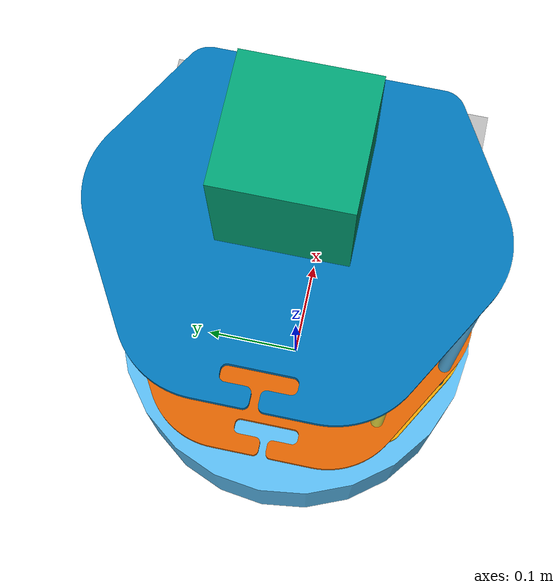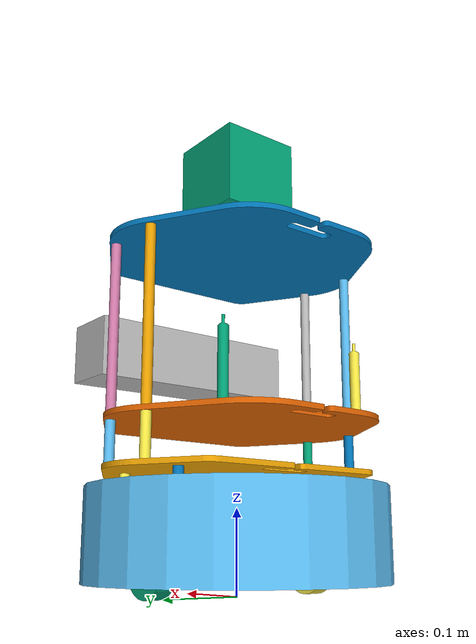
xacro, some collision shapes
<?xml version="1.0"?>
<!--
    - Base      : kobuki
    - Stacks    : hexagons
    - 3d Sensor : fisheye_stereo
    - IMU Sensor: mpu_6000
-->
<robot name="turtlebot" xmlns:xacro="http://ros.org/wiki/xacro">

  <xacro:include filename="$(find turtlebot_description)/urdf/turtlebot_common_library.urdf.xacro" />
  <xacro:include filename="$(find kobuki_description)/urdf/kobuki_mpu_6000.urdf.xacro" />
  <xacro:include filename="$(find turtlebot_description)/urdf/stacks/hexagons.urdf.xacro"/>
  <xacro:include filename="$(find turtlebot_description)/urdf/sensors/fisheye_stereo.urdf.xacro"/>
  <xacro:include filename="$(find turtlebot_description)/urdf/sensors/laser.urdf.xacro"/>

  <xacro:kobuki/>
  <xacro:stack_hexagons parent="base_link"/>
  <xacro:sensor_stereo  parent="base_link"/>
  <xacro:sensor_laser   parent="base_link"/>
</robot>

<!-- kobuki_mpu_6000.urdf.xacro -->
<robot name="kobuki" xmlns:xacro="http://ros.org/wiki/xacro">
  <xacro:include filename="$(find kobuki_description)/urdf/common_properties.urdf.xacro"/>
  <xacro:include filename="$(find kobuki_description)/urdf/kobuki_mpu_6000_gazebo.urdf.xacro"/>

  <!-- Kobuki -->
  <xacro:macro name="kobuki">
    <link name="base_footprint"/>
    <joint name="base_joint" type="fixed">
      <origin xyz="0 0 0.0102" rpy="0 0 0" />
      <parent link="base_footprint"/>
      <child link="base_link" />
    </joint>
    <link name="base_link">
      <visual>
        <geometry>
          <!-- new mesh -->
          <mesh filename="package://kobuki_description/meshes/main_body.dae" />
        </geometry>
        <origin xyz="0.001 0 0.05199" rpy="0 0 0"/>
      </visual>
      <collision name="base">
        <geometry>
          <cylinder length="0.10938" radius="0.178"/>
        </geometry>
        <origin xyz="0.0 0 0.05949" rpy="0 0 0"/>
      </collision>
      <inertial>
        <!-- COM experimentally determined -->
        <origin xyz="0.01 0 0"/>
        <mass value="2.4"/> <!-- 2.4/2.6 kg for small/big battery pack -->
        <inertia ixx="0.019995" ixy="0.0" ixz="0.0"
                 iyy="0.019995" iyz="0.0"
                 izz="0.03675" />
      </inertial>
    </link>

    <joint name="wheel_left_joint" type="continuous">
      <parent link="base_link"/>
      <child link="wheel_left_link"/>
      <origin xyz="0.00 ${0.23/2} 0.0250" rpy="${-M_PI/2} 0 0"/>
      <axis xyz="0 0 1"/>
    </joint>
    <link name="wheel_left_link">
      <visual>
        <geometry>
          <mesh filename="package://kobuki_description/meshes/wheel.dae"/>
        </geometry>
        <origin xyz="0 0 0" rpy="0 0 0"/>
      </visual>
      <collision>
        <geometry>
          <cylinder length="0.0206" radius="0.0352"/>
        </geometry>
        <origin rpy="0 0 0" xyz="0 0 0"/>
      </collision>
      <inertial>
        <mass value="0.01" />
        <origin xyz="0 0 0" />
        <inertia ixx="0.001" ixy="0.0" ixz="0.0"
                 iyy="0.001" iyz="0.0"
                 izz="0.001" />
      </inertial>
    </link>

    <joint name="wheel_right_joint" type="continuous">
      <parent link="base_link"/>
      <child link="wheel_right_link"/>
      <origin xyz="0.00 -${0.23/2} 0.0250" rpy="${-M_PI/2} 0 0"/>
      <axis xyz="0 0 1"/>
    </joint>
    <link name="wheel_right_link">
      <visual>
        <geometry>
          <mesh filename="package://kobuki_description/meshes/wheel.dae"/>
        </geometry>
        <origin xyz="0 0 0" rpy="0 0 0"/>
      </visual>
      <collision>
        <geometry>
          <cylinder length="0.0206" radius="0.0350"/>
        </geometry>
        <origin rpy="0 0 0" xyz="0 0 0"/>
      </collision>
      <inertial>
        <mass value="0.01" />
        <origin xyz="0 0 0" />
        <inertia ixx="0.001" ixy="0.0" ixz="0.0"
                 iyy="0.001" iyz="0.0"
                 izz="0.001" />
      </inertial>
    </link>

    <joint name="caster_front_joint" type="fixed">
      <parent link="base_link"/>
      <child link="caster_front_link"/>
      <origin xyz="0.115 0.0 0.007" rpy="${-M_PI/2} 0 0"/>
    </joint>
    <link name="caster_front_link">
      <collision>
        <geometry>
          <cylinder length="0.0176" radius="0.017"/>
        </geometry>
        <origin rpy="0 0 0" xyz="0 0 0"/>
      </collision>
      <inertial>
        <mass value="0.01" />
        <origin xyz="0 0 0" />
        <inertia ixx="0.001" ixy="0.0" ixz="0.0"
                 iyy="0.001" iyz="0.0"
                 izz="0.001" />
      </inertial>
    </link>

    <joint name="caster_back_joint" type="fixed">
      <parent link="base_link"/>
      <child link="caster_back_link"/>
      <origin xyz="-0.135 0.0 0.009" rpy="${-M_PI/2} 0 0"/>
    </joint>
    <link name="caster_back_link">
      <collision>
        <geometry>
          <cylinder length="0.0176" radius="0.017"/>
        </geometry>
        <origin rpy="0 0 0" xyz="0 0 0"/>
      </collision>
      <inertial>
        <mass value="0.01" />
        <origin xyz="0 0 0" />
        <inertia ixx="0.001" ixy="0.0" ixz="0.0"
                 iyy="0.001" iyz="0.0"
                 izz="0.001" />
      </inertial>
    </link>

    <!-- Kobuki's sensors -->
    <joint name="gyro_joint" type="fixed">
      <axis xyz="0 1 0"/>
      <origin xyz="0.056 0.062 0.0202" rpy="0 0 0"/>
      <parent link="base_link"/>
      <child link="gyro_link"/>
    </joint>
    <link name="gyro_link">
      <inertial>
        <mass value="0.001"/>
        <origin xyz="0 0 0" rpy="0 0 0"/>
        <inertia ixx="0.0001" ixy="0" ixz="0"
                 iyy="0.000001" iyz="0"
                 izz="0.0001"/>
      </inertial>
    </link>

    <joint name="cliff_sensor_left_joint" type="fixed">
      <origin xyz="0.08734 0.13601 0.0214" rpy="0 ${M_PI/2} 0" />
      <parent link="base_link"/>
      <child link="cliff_sensor_left_link" />
    </joint>
    <link name="cliff_sensor_left_link">
      <inertial>
        <mass value="0.0001" />
        <origin xyz="0 0 0" />
        <inertia ixx="0.0001" ixy="0.0" ixz="0.0"
                 iyy="0.0001" iyz="0.0"
                 izz="0.0001" />
      </inertial>
    </link>

    <joint name="cliff_sensor_right_joint" type="fixed">
      <origin xyz="0.085 -0.13601 0.0214" rpy="0 ${M_PI/2} 0" />
      <parent link="base_link"/>
      <child link="cliff_sensor_right_link" />
    </joint>
    <link name="cliff_sensor_right_link">
      <inertial>
        <mass value="0.0001" />
        <origin xyz="0 0 0" />
        <inertia ixx="0.0001" ixy="0.0" ixz="0.0"
                 iyy="0.0001" iyz="0.0"
                 izz="0.0001" />
      </inertial>
    </link>

    <joint name="cliff_sensor_front_joint" type="fixed">
      <origin xyz="0.156 0.00 0.0214" rpy="0 ${M_PI/2} 0" />
      <parent link="base_link"/>
      <child link="cliff_sensor_front_link" />
    </joint>
    <link name="cliff_sensor_front_link">
      <inertial>
        <mass value="0.0001" />
        <origin xyz="0 0 0" />
        <inertia ixx="0.0001" ixy="0.0" ixz="0.0"
                 iyy="0.0001" iyz="0.0"
                 izz="0.0001" />
      </inertial>
    </link>

    <!-- Kobuki Gazebo simulation details -->
    <xacro:kobuki_sim/>

  </xacro:macro>
</robot>

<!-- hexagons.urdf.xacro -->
<!--
  Hexagon stacks
 -->
<robot name="stack_hexagons" xmlns:xacro="http://ros.org/wiki/xacro">
  <xacro:include filename="$(find turtlebot_description)/urdf/common_properties.urdf.xacro"/>

  <!-- Xacro properties -->
  <xacro:property name="M_SCALE" value="0.001"/>

  <!-- Xacro macros -->
  <!-- Pole macros -->
  <xacro:macro name="stack_bottom_pole" params="parent number x_loc y_loc z_loc roll=0.0 pitch=0.0 yaw=0.0">
    <joint name="pole_bottom_${number}_joint" type="fixed">
      <origin xyz="${x_loc} ${y_loc} ${z_loc}" rpy="${roll} ${pitch} ${yaw}"/>
      <parent link="${parent}"/>
      <child link="pole_bottom_${number}_link"/>
    </joint>
    <link name="pole_bottom_${number}_link">
      <visual>
        <origin xyz="0 0 0" rpy="0 0 0"/>
        <geometry>
          <mesh filename="package://turtlebot_description/meshes/stacks/hexagons/pole_bottom.dae"/>
        </geometry>
      </visual>
      <collision>
        <origin xyz="0 0 0" rpy="0 0 0"/>
        <geometry>
          <cylinder length="0.0492" radius="0.006"/>
        </geometry>
      </collision>
      <inertial>
        <mass value="0.008"/>
        <origin xyz="0 0 0" rpy="0 0 0"/>
        <inertia ixx="0.000001686" ixy="0.0" ixz="0.0"
                 iyy="0.000001686" iyz="0.0"
                 izz="0.000000144"/>
      </inertial>
    </link>
  </xacro:macro>

  <xacro:macro name="stack_middle_pole" params="parent number x_loc y_loc z_loc roll=0.0 pitch=0.0 yaw=0.0">
    <joint name="pole_middle_${number}_joint" type="fixed">
      <origin xyz="${x_loc} ${y_loc} ${z_loc}" rpy="${roll} ${pitch} ${yaw}" />
      <parent link="${parent}"/>
      <child link="pole_middle_${number}_link"/>
    </joint>
    <link name="pole_middle_${number}_link">
      <visual>
        <origin xyz="0 0 0" rpy="0 ${M_PI} 0"/>
        <geometry>
          <mesh filename="package://turtlebot_description/meshes/stacks/hexagons/pole_middle.dae"/>
        </geometry>
      </visual>
      <collision>
        <origin xyz="0 0 0" rpy="0 0 0"/>
        <geometry>
          <cylinder length="0.0608" radius="0.006"/>
        </geometry>
      </collision>
      <inertial>
        <mass value="0.012"/>
        <origin xyz="0 0 0"/>
        <inertia ixx="0.000003805" ixy="0.0" ixz="0.0"
                 iyy="0.000003805" iyz="0.0"
                 izz="0.000000216"/>
      </inertial>
    </link>
  </xacro:macro>

  <xacro:macro name="stack_top_pole" params="parent number x_loc y_loc z_loc roll=0.0 pitch=0.0 yaw=0.0">
    <joint name="pole_top_${number}_joint" type="fixed">
      <origin xyz="${x_loc} ${y_loc} ${z_loc}" rpy="${roll} ${pitch} ${yaw}"/>
      <parent link="${parent}"/>
      <child link="pole_top_${number}_link"/>
    </joint>
    <link name="pole_top_${number}_link">
      <visual>
        <origin xyz=" 0 0 0" rpy="0 0 0"/>
        <geometry>
          <mesh filename="package://turtlebot_description/meshes/stacks/hexagons/pole_top.dae"/>
        </geometry>
      </visual>
      <collision>
        <origin xyz="0 0 0" rpy="0 0 0"/>
        <geometry>
          <cylinder length="0.2032" radius="0.006"/>
        </geometry>
      </collision>
      <inertial>
        <mass value="0.060"/>
        <origin xyz="0 0 0"/>
        <inertia ixx="0.000206991" ixy="0.0" ixz="0.0"
                 iyy="0.000206991" iyz="0.0"
                 izz="0.000001080"/>
      </inertial>
    </link>
  </xacro:macro>

  <xacro:macro name="stack_3d_sensor_pole" params="parent number x_loc y_loc z_loc roll=0.0 pitch=0.0 yaw=0.0">
    <joint name="pole_kinect_${number}_joint" type="fixed">
      <origin xyz="${x_loc} ${y_loc} ${z_loc}" rpy="${roll} ${pitch} ${yaw}"/>
      <parent link="${parent}"/>
      <child link="pole_kinect_${number}_link"/>
    </joint>
    <link name="pole_kinect_${number}_link">
      <visual>
        <origin xyz="0 0 0" rpy="0 0 0"/>
        <geometry>
          <mesh filename="package://turtlebot_description/meshes/stacks/hexagons/pole_kinect.dae" />
        </geometry>
      </visual>
      <collision>
        <origin xyz="0 0 0" rpy="0 0 0"/>
        <geometry>
          <cylinder length="0.0936" radius="0.006"/>
        </geometry>
      </collision>
      <inertial>
        <mass value="0.020"/>
        <origin xyz="0 0 0"/>
        <inertia ixx="0.000014782" ixy="0.0" ixz="0.0"
                 iyy="0.000014782" iyz="0.0"
                 izz="0.000000360"/>
      </inertial>
    </link>
  </xacro:macro>

  <xacro:macro name="stack_hexagons" params="parent">
    <xacro:stack_bottom_pole parent="${parent}" number="0" x_loc= "0.120" y_loc= "0.082" z_loc="0.1028"/>
    <xacro:stack_bottom_pole parent="${parent}" number="1" x_loc= "0.055" y_loc= "0.120" z_loc="0.1028"/>
    <xacro:stack_bottom_pole parent="${parent}" number="2" x_loc="-0.055" y_loc= "0.120" z_loc="0.1028"/>
    <xacro:stack_bottom_pole parent="${parent}" number="3" x_loc= "0.120" y_loc="-0.082" z_loc="0.1028"/>
    <xacro:stack_bottom_pole parent="${parent}" number="4" x_loc= "0.055" y_loc="-0.120" z_loc="0.1028"/>
    <xacro:stack_bottom_pole parent="${parent}" number="5" x_loc="-0.055" y_loc="-0.120" z_loc="0.1028"/>

    <joint name="plate_bottom_joint" type="fixed">
      <origin xyz="0.02364 0.0 0.1306" rpy="0 0 0"/>
      <parent link="${parent}"/>
      <child link="plate_bottom_link"/>
    </joint>
    <link name="plate_bottom_link">
      <visual>
        <origin xyz="0 0 0" rpy="0 0 0"/>
        <geometry>
          <mesh filename="package://turtlebot_description/meshes/stacks/hexagons/plate_bottom.dae"/>
        </geometry>
      </visual>
      <collision>
        <origin xyz="-0.02364 0 0" rpy="0 0 0"/>
        <geometry>
          <cylinder length="0.006" radius="0.170"/>
        </geometry>
      </collision>
      <inertial>
        <mass value="0.520" />
        <origin xyz="0 0 0" />
        <inertia ixx="0.003328" ixy="0.0" ixz="0.0"
                 iyy="0.003328" iyz="0.0"
                 izz="0.006656" />
      </inertial>
    </link>

    <xacro:stack_middle_pole parent="${parent}" number="0" x_loc= "0.0381" y_loc= "0.1505" z_loc="0.1640"/>
    <xacro:stack_middle_pole parent="${parent}" number="1" x_loc= "0.0381" y_loc="-0.1505" z_loc="0.1640"/>
    <xacro:stack_middle_pole parent="${parent}" number="2" x_loc="-0.0381" y_loc= "0.1505" z_loc="0.1640"/>
    <xacro:stack_middle_pole parent="${parent}" number="3" x_loc="-0.0381" y_loc="-0.1505" z_loc="0.1640"/>

    <joint name="plate_middle_joint" type="fixed">
      <origin xyz="-0.01364 0.0 0.1874" rpy="0 0 0"/>
      <parent link="${parent}"/>
      <child link="plate_middle_link"/>
    </joint>
    <link name="plate_middle_link">
      <visual>
        <origin xyz="0 0 0" rpy="0 0 0"/>
        <geometry>
          <mesh filename="package://turtlebot_description/meshes/stacks/hexagons/plate_middle.dae"/>
        </geometry>
      </visual>
      <collision>
        <origin xyz="0.01364 0.0 0.0" rpy="0 0 0"/>
        <geometry>
          <mesh filename="package://turtlebot_description/meshes/stacks/hexagons/plate_simple-binary.stl"
                scale="${M_SCALE} ${M_SCALE} ${M_SCALE}"/>
        </geometry>
      </collision>
      <inertial>
        <mass value="0.520" />
        <origin xyz="0 0 0" />
        <inertia ixx="0.003328" ixy="0.0" ixz="0.0"
                 iyy="0.003328" iyz="0.0"
                 izz="0.006656" />
      </inertial>
    </link>

    <xacro:stack_top_pole parent="${parent}" number="0" x_loc= "0.0381" y_loc= "0.1505" z_loc="0.2920"/>
    <xacro:stack_top_pole parent="${parent}" number="1" x_loc= "0.0381" y_loc="-0.1505" z_loc="0.2920"/>
    <xacro:stack_top_pole parent="${parent}" number="2" x_loc="-0.0381" y_loc= "0.1505" z_loc="0.2920"/>
    <xacro:stack_top_pole parent="${parent}" number="3" x_loc="-0.0381" y_loc="-0.1505" z_loc="0.2920"/>
    <xacro:stack_3d_sensor_pole parent="${parent}" number="0" x_loc="-0.1024" y_loc= "0.098" z_loc="0.2372"/>
    <xacro:stack_3d_sensor_pole parent="${parent}" number="1" x_loc="-0.1024" y_loc="-0.098" z_loc="0.2372"/>

    <joint name="plate_top_joint" type="fixed">
      <origin xyz="-0.01364 0.0  0.3966" rpy="0 0 0"/>
      <parent link="${parent}"/>
      <child link="plate_top_link"/>
    </joint>
    <link name="plate_top_link">
      <visual>
        <origin xyz="0 0 0" rpy="0 0 0"/>
        <geometry>
          <mesh filename="package://turtlebot_description/meshes/stacks/hexagons/plate_top.dae"/>
        </geometry>
      </visual>
      <collision>
        <origin xyz="0.01364 0 0" rpy="0 0 0"/>
        <geometry>
          <mesh filename="package://turtlebot_description/meshes/stacks/hexagons/plate_simple-binary.stl"
                scale="${M_SCALE} ${M_SCALE} ${M_SCALE}"/>
        </geometry>
      </collision>
      <inertial>
        <mass value="0.520"/>
        <origin xyz="0 0 0"/>
        <inertia ixx="0.003328" ixy="0.0" ixz="0.0"
                 iyy="0.003328" iyz="0.0"
                 izz="0.006656" />
      </inertial>
    </link>
  </xacro:macro>
</robot>

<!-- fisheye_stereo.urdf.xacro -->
<robot name="sensor_stereo" xmlns:xacro="http://ros.org/wiki/xacro">
  <xacro:include filename="$(find turtlebot_description)/urdf/turtlebot_gazebo_fisheye_stereo.urdf.xacro"/>
  <xacro:include filename="$(find turtlebot_description)/urdf/turtlebot_properties_fisheye_stereo.urdf.xacro"/>

  <xacro:property name="fisheye_cam_py" value="-0.0125"/>
  <!-- Parameterised in part by the values in turtlebot_properties.urdf.xacro -->
  <xacro:macro name="sensor_stereo" params="parent">
    <joint name="left_camera_joint" type="fixed">
      <origin xyz="${cam_px} ${fisheye_cam_py} ${cam_pz}" rpy="${cam_or} ${cam_op} ${cam_oy}"/>
      <parent link="${parent}"/>
      <child link="left_camera_frame" />
    </joint>
    <link name="left_camera_frame"/>

    <joint name="left_camera_optical_joint" type="fixed">
      <origin xyz="0 0 0" rpy="${-M_PI/2} 0 ${-M_PI/2}" />
      <parent link="left_camera_frame" />
      <child link="left_camera_optical_frame" />
    </joint>
    <link name="left_camera_optical_frame"/>

    <joint name="camera_joint_1" type="fixed">
      <origin xyz="-0.031 ${-fisheye_cam_py} -0.016" rpy="0 0 0"/>
      <parent link="left_camera_frame"/>
      <child link="camera_link_1"/>
    </joint>
      <link name="camera_link_1">
      <visual>
       <origin xyz="0 0 0" rpy="0 0 ${M_PI/2}"/>
        <geometry>
         <mesh filename="package://turtlebot_description/meshes/sensors/r200.dae"/>
        </geometry>
      </visual>
      <collision>
        <origin xyz="0.0 0.0 0.0" rpy="0 0 0"/>
        <geometry>
          <box size="0.07271 0.27794 0.073"/>
        </geometry>
      </collision>
      <inertial>
        <mass value="0.564" />
        <origin xyz="0 0 0" />
        <inertia ixx="0.003881243" ixy="0.0" ixz="0.0"
                 iyy="0.000498940" iyz="0.0"
                 izz="0.003879257" />
      </inertial>
    </link>

  <joint name="right_camera_joint" type="fixed">
    <origin xyz="0 ${-stereo_baseline} 0" rpy="0 0 0" />
    <parent link="left_camera_frame" />
    <child link="right_camera_frame" />
  </joint>
  <link name="right_camera_frame"/>

  <joint name="right_camera_optical_joint" type="fixed">
    <origin xyz="0 0 0" rpy="${-M_PI/2} 0 ${-M_PI/2}" />
    <parent link="right_camera_frame" />
    <child link="right_camera_optical_frame" />
  </joint>
  <link name="right_camera_optical_frame"/>

  <!-- Kinect sensor for simulation -->
  <xacro:turtlebot_sim_stereo_sensor/>
  </xacro:macro>
</robot>

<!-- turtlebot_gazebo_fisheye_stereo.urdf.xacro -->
<robot name="turtlebot_gazebo" xmlns:xacro="http://ros.org/wiki/xacro">
  <!-- Microsoft Kinect / ASUS Xtion PRO Live for simulation -->
  <xacro:property name="stereo_baseline" value="0.11"/>
  <xacro:macro name="turtlebot_sim_stereo_sensor">
    <gazebo reference="camera_link_1">
    <sensor type="multicamera" name="stereo_camera">
      <always_on>true</always_on>
      <update_rate>30.0</update_rate>
      <camera name="left">
        <horizontal_fov>1.61408657</horizontal_fov>
        <image>
          <width>752</width>
          <height>480</height>
          <format>B8G8R8</format>
        </image>
        <clip>
          <near>0.05</near>
          <far>50</far>
        </clip>
        <noise>
          <type>gaussian</type>
          <mean>0.0</mean>
          <stddev>0.02</stddev>
        </noise>
      </camera>
      <camera name="right">
        <pose>0 ${-stereo_baseline} 0 0 0 0</pose>
        <horizontal_fov>1.61408657</horizontal_fov>
        <image>
          <width>752</width>
          <height>480</height>
          <format>B8G8R8</format>
        </image>
        <clip>
          <near>0.05</near>
          <far>50</far>
        </clip>
        <noise>
          <type>gaussian</type>
          <mean>0.0</mean>
          <stddev>0.02</stddev>
        </noise>
      </camera>
      <plugin name="stereo_camera_controller" filename="libgazebo_ros_multicamera.so">
        <cameraName>multisense_sl/camera</cameraName>
        <alwaysOn>true</alwaysOn>
        <!-- ATTENTION keep the update rate as it is for customed fps!!! -->
        <imageTopicName>image_raw</imageTopicName>
        <cameraInfoTopicName>camera_info</cameraInfoTopicName>
        <frameName>left_camera_optical_frame</frameName>
        <hackBaseline>${stereo_baseline}</hackBaseline>
        <CxPrime>376</CxPrime>
        <Cx>376</Cx>
        <Cy>240</Cy>
        <!-- image_width / (2*tan(hfov_radian /2)) 360.0652897865692 -->
        <!-- 320 for wide and 772.55 for narrow stereo camera -->
        <focal_length>360.06528871</focal_length>
        <distortionK1>0.0</distortionK1>
        <distortionK2>0.0</distortionK2>
        <distortionK3>0.0</distortionK3>
        <distortionT1>0.0</distortionT1>
        <distortionT2>0.0</distortionT2>
      </plugin>
    </sensor>
  </gazebo>
  </xacro:macro>
</robot>

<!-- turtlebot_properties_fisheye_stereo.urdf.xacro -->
<robot xmlns:xacro="http://ros.org/wiki/xacro">
  <!--
    These properties must be observed by any machine
    that wants to be defined as a turtlebot. Refer
    to the REP for more details.

    http://www.ros.org/reps/rep-0119.html
   -->

	<xacro:property name="cam_px" value="0.15" />
	<xacro:property name="cam_pz" value="0.3" />
	<xacro:property name="cam_or" value="0" />
	<xacro:property name="cam_op" value="0" />
	<xacro:property name="cam_oy" value="0" />

</robot>

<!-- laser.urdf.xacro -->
<robot name="sensor_laser" xmlns:xacro="http://ros.org/wiki/xacro">
  <xacro:include filename="$(find turtlebot_description)/urdf/turtlebot_gazebo_laser.urdf.xacro"/>
  <xacro:include filename="$(find turtlebot_description)/urdf/turtlebot_properties_laser.urdf.xacro"/>

  <!-- Parameterised in part by the values in turtlebot_properties.urdf.xacro -->
  <xacro:macro name="sensor_laser" params="parent">
    <joint name="laser_joint" type="fixed">
      <axis xyz="0 1 0" />
      <origin xyz="${laser_px} ${laser_py} ${laser_pz}" rpy="${laser_or} ${laser_op} ${laser_oy}"/>
      <parent link="${parent}"/>
      <child link="laser_link"/>
    </joint>

    <!-- 2D Laser -->
    <link name="laser_link">
      <collision>
        <origin xyz="0 0 0" rpy="0 0 0"/>
        <geometry>
          <box size="0.1 0.1 0.1"/>
        </geometry>
      </collision>

      <visual>
        <origin xyz="0 0 0" rpy="0 0 0"/>
        <geometry>
          <mesh filename="package://turtlebot_description/meshes/sensors/hokuyo.dae"/>
        </geometry>
      </visual>

      <inertial>
        <mass value="1e-5" />
        <origin xyz="0 0 0" rpy="0 0 0"/>
        <inertia ixx="1e-6" ixy="0" ixz="0" iyy="1e-6" iyz="0" izz="1e-6" />
      </inertial>
    </link>
    <xacro:turtlebot_sim_laser_sensor/>
  </xacro:macro>
</robot>

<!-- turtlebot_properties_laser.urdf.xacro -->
<robot xmlns:xacro="http://ros.org/wiki/xacro">
  <!--
    These properties must be observed by any machine
    that wants to be defined as a turtlebot. Refer
    to the REP for more details.

    http://www.ros.org/reps/rep-0119.html
   -->

	<xacro:property name="laser_px" value="0.0" />
	<xacro:property name="laser_py" value="0.0" />
	<xacro:property name="laser_pz" value="0.5" />
	<xacro:property name="laser_or" value="0" />
	<xacro:property name="laser_op" value="0" />
	<xacro:property name="laser_oy" value="0" />

</robot>
